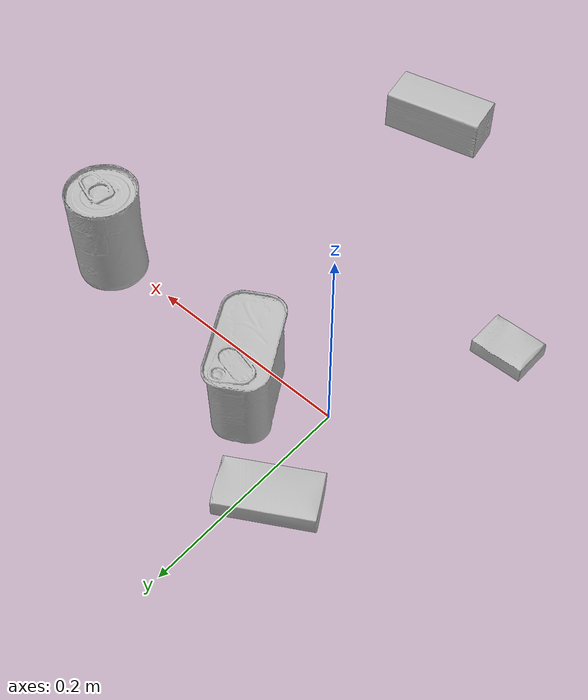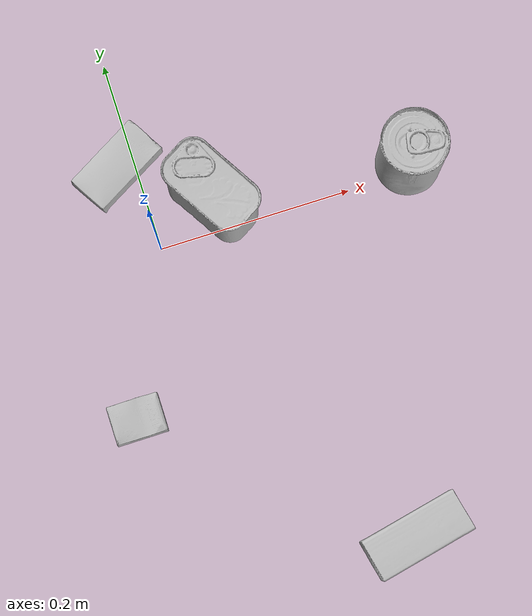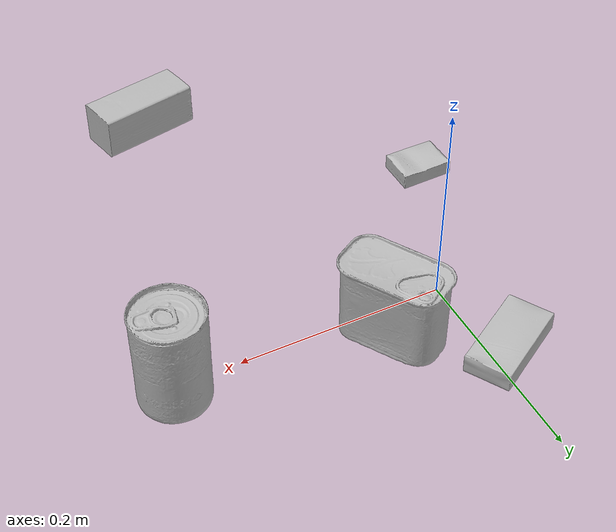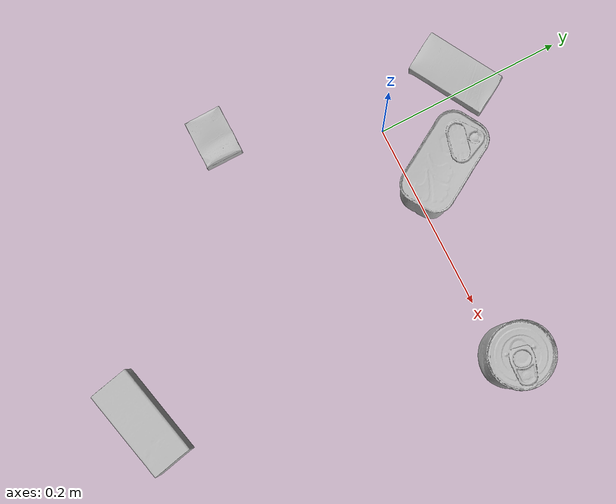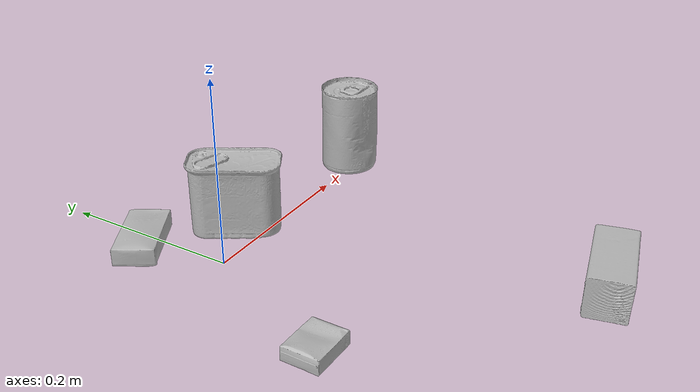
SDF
<sdf version="1.4">
  <world name="default">
    <light name="light1" type="point">
      <pose>0 0 1 0 0 0</pose>
      <diffuse>3 3 3 1</diffuse>
      <specular>3 3 3 1</specular>
    </light>
    <light name="light2" type="point">
      <pose>0 0.5 2 0 0 0</pose>
      <diffuse>1 1 1 1</diffuse>
      <specular>1 1 1 1</specular>
    </light>
    <light name="light3" type="point">
      <pose>0 0.5 2 0 0 0</pose>
      <diffuse>3 3 3 1</diffuse>
      <specular>3 3 3 1</specular>
    </light>
    <scene>
      <ambient>0.7 0.7 0.7</ambient>
    </scene>
    <model name="box1">
      <link name="link_box1">
        <collision name="default">
          <geometry>
            <mesh>
              <uri>model://sugar_box/collision_meshes/collision.obj</uri>
              <scale>0.5 0.5 0.5</scale>
            </mesh>
          </geometry>
          <surface>
            <friction>
              <ode>
                <mu>0.5</mu>
                <mu2>0.5</mu2>
              </ode>
            </friction>
          <contact>
        <ode>
            <max_vel>0</max_vel>
            <min_depth>0.0001</min_depth>
            <kp>1e8</kp>
        </ode>
    </contact></surface>
        </collision>
        <visual name="default">
          <geometry>
            <mesh>
              <uri>model://sugar_box/visual_meshes/visual.dae</uri>
              <scale>0.5 0.5 0.5</scale>
            </mesh>
          </geometry>
        </visual>
        <inertial>
          <mass>0.048160675913095474</mass>
          <pose>0.0005171863595023751 1.924554817378521e-05 -0.00018182402709499002 -0.0004046258638373534 0.0010506635215919557 0.0026153787891515894</pose>
          <inertia>
            <ixx>1.0031835e-05</ixx>
            <iyy>3.2424945e-05</iyy>
            <izz>3.8816543e-05</izz>
            <ixy>0</ixy>
            <ixz>0</ixz>
            <iyz>0</iyz>
          </inertia>
        </inertial>
      </link>
      <pose>-0.017078544944524765 0.09336425364017487 0.011399307288229465 0.0007755185252870188 -0.02343269775703367 -2.6160509907754066</pose>
    </model>
    <model name="box2">
      <link name="link_box2">
        <collision name="default">
          <geometry>
            <mesh>
              <uri>model://cracker_box/collision_meshes/collision.obj</uri>
              <scale>0.25 0.25 0.25</scale>
            </mesh>
          </geometry>
          <surface>
            <friction>
              <ode>
                <mu>0.5</mu>
                <mu2>0.5</mu2>
              </ode>
            </friction>
          <contact>
        <ode>
            <max_vel>0</max_vel>
            <min_depth>0.0001</min_depth>
            <kp>1e8</kp>
        </ode>
    </contact></surface>
        </collision>
        <visual name="default">
          <geometry>
            <mesh>
              <uri>model://cracker_box/visual_meshes/visual.dae</uri>
              <scale>0.25 0.25 0.25</scale>
            </mesh>
          </geometry>
        </visual>
        <inertial>
          <mass>0.047952666878700256</mass>
          <pose>0.00023660370789002627 6.358561950037256e-05 -0.0004257383698131889 -0.0003162075404896153 -0.011106488669099107 0.002546795234185617</pose>
          <inertia>
            <ixx>7.623136e-06</ixx>
            <iyy>1.2587296e-05</iyy>
            <izz>1.7963224e-05</izz>
            <ixy>0</ixy>
            <ixz>0</ixz>
            <iyz>0</iyz>
          </inertia>
        </inertial>
      </link>
      <pose>-0.07308518886566162 -0.15847647190093994 0.009120449423789978 -0.011787989834106826 -0.007367180308775454 -3.141457173610005</pose>
    </model>
    <model name="box3">
      <link name="link_box3">
        <collision name="default">
          <geometry>
            <mesh>
              <uri>model://wood_block/collision_meshes/collision.obj</uri>
              <scale>0.5 0.5 0.5</scale>
            </mesh>
          </geometry>
          <surface>
            <friction>
              <ode>
                <mu>0.5</mu>
                <mu2>0.5</mu2>
              </ode>
            </friction>
          <contact>
        <ode>
            <max_vel>0</max_vel>
            <min_depth>0.0001</min_depth>
            <kp>1e8</kp>
        </ode>
    </contact></surface>
        </collision>
        <visual name="default">
          <geometry>
            <mesh>
              <uri>model://wood_block/visual_meshes/visual.dae</uri>
              <scale>0.5 0.5 0.5</scale>
            </mesh>
          </geometry>
        </visual>
        <inertial>
          <mass>0.27162742614746094</mass>
          <pose>-2.9066577553749084e-06 -0.000285404734313488 0.00013204291462898254 -0.05220780121661256 -0.005192696561201931 -0.006861379819720353</pose>
          <inertia>
            <ixx>9.086965e-05</ixx>
            <iyy>0.00028705722</iyy>
            <izz>0.0002859835</izz>
            <ixy>0</ixy>
            <ixz>0</ixz>
            <iyz>0</iyz>
          </inertia>
        </inertial>
      </link>
      <pose>0.15416772663593292 -0.35148993134498596 0.02262926660478115 -0.0052085176709257865 0.0057187112157372644 -2.9271150745498153</pose>
    </model>
    <model name="can1">
      <link name="link_can1">
        <collision name="default">
          <geometry>
            <mesh>
              <uri>model://tomato_soup_can/collision_meshes/collision.obj</uri>
              <scale>1.0 1.0 1.0</scale>
            </mesh>
          </geometry>
          <surface>
            <friction>
              <ode>
                <mu>0.5</mu>
                <mu2>0.5</mu2>
              </ode>
            </friction>
          <contact>
        <ode>
            <max_vel>0</max_vel>
            <min_depth>0.0001</min_depth>
            <kp>1e8</kp>
        </ode>
    </contact></surface>
        </collision>
        <visual name="default">
          <geometry>
            <mesh>
              <uri>model://tomato_soup_can/visual_meshes/visual.dae</uri>
              <scale>1.0 1.0 1.0</scale>
            </mesh>
          </geometry>
        </visual>
        <inertial>
          <mass>0.33680883049964905</mass>
          <pose>0.0001265227037947625 0.0001080552683561109 -0.0017973986687138677 0.007020065933643549 0.0004229964102555597 -0.009903579397299064</pose>
          <inertia>
            <ixx>0.00036928226</ixx>
            <iyy>0.0003671481</iyy>
            <izz>0.00019139561</izz>
            <ixy>0</ixy>
            <ixz>0</ixz>
            <iyz>0</iyz>
          </inertia>
        </inertial>
      </link>
      <pose>0.265400230884552 0.007763938046991825 0.051274001598358154 -5.808159116815972e-07 -7.729588776806449e-07 1.0886696667573537</pose>
    </model>
    <model name="can2">
      <link name="link_can2">
        <collision name="default">
          <geometry>
            <mesh>
              <uri>model://potted_meat_can/collision_meshes/collision.obj</uri>
              <scale>1.0 1.0 1.0</scale>
            </mesh>
          </geometry>
          <surface>
            <friction>
              <ode>
                <mu>0.5</mu>
                <mu2>0.5</mu2>
              </ode>
            </friction>
          <contact>
        <ode>
            <max_vel>0</max_vel>
            <min_depth>0.0001</min_depth>
            <kp>1e8</kp>
        </ode>
    </contact></surface>
        </collision>
        <visual name="default">
          <geometry>
            <mesh>
              <uri>model://potted_meat_can/visual_meshes/visual.dae</uri>
              <scale>1.0 1.0 1.0</scale>
            </mesh>
          </geometry>
        </visual>
        <inertial>
          <mass>0.5009446144104004</mass>
          <pose>0.00022888141393195838 -5.9891164710279554e-05 -0.0006367440801113844 -0.028093347044227477 -0.007232596108467961 0.015406262357490775</pose>
          <inertia>
            <ixx>0.0006444129</ixx>
            <iyy>0.0003915297</iyy>
            <izz>0.00046868768</izz>
            <ixy>0</ixy>
            <ixz>0</ixz>
            <iyz>0</iyz>
          </inertia>
        </inertial>
      </link>
      <pose>0.06542422622442245 0.031596723943948746 0.04212801530957222 -4.541027008834844e-08 -2.7380101789937356e-07 -2.6116248428073936</pose>
    </model>
  <physics type="ode">
      <max_contacts>50</max_contacts>
      <ode>
        <solver>
          <type>quick</type>
          <iters>75</iters>
        </solver>
        <constraints>
          <contact_max_correcting_vel>0</contact_max_correcting_vel>
          <contact_surface_layer>0</contact_surface_layer>
        </constraints>
      </ode>
    </physics></world>
</sdf>
